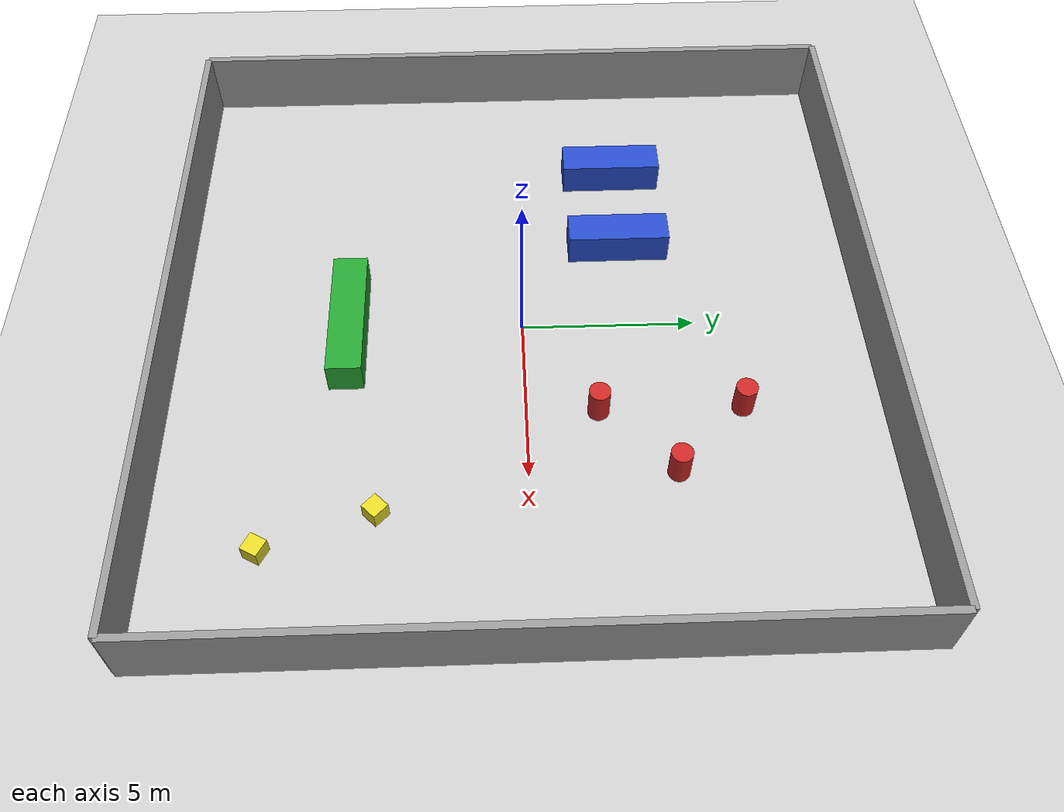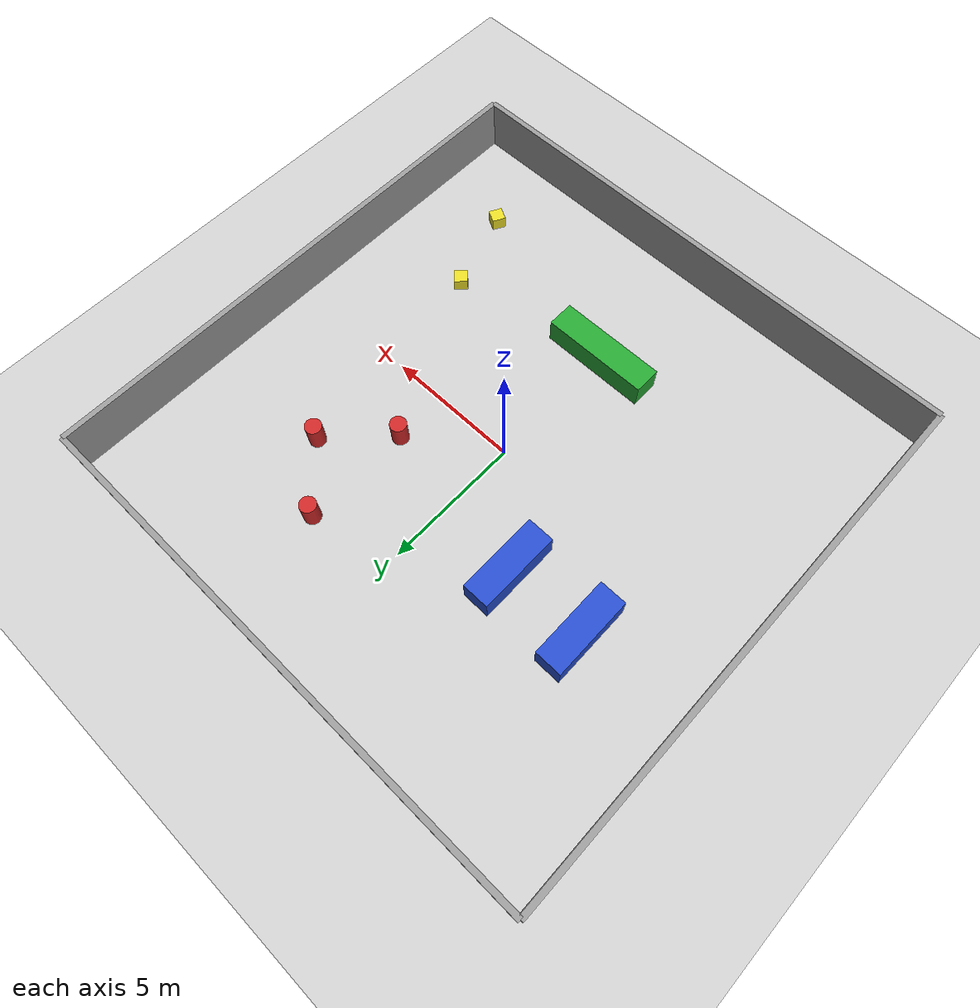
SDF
<sdf version='1.7'>
  <world name='default'>
    <light name='sun' type='directional'>
      <cast_shadows>1</cast_shadows>
      <pose>0 0 10 0 -0 0</pose>
      <diffuse>0.8 0.8 0.8 1</diffuse>
      <specular>0.2 0.2 0.2 1</specular>
      <attenuation>
        <range>1000</range>
        <constant>0.9</constant>
        <linear>0.01</linear>
        <quadratic>0.001</quadratic>
      </attenuation>
      <direction>-0.5 0.1 -0.9</direction>
    </light>

    <model name='ground_plane'>
      <static>1</static>
      <link name='link'>
        <collision name='collision'>
          <geometry>
            <plane>
              <normal>0 0 1</normal>
              <size>100 100</size>
            </plane>
          </geometry>
          <surface>
            <friction>
              <ode>
                <mu>100</mu>
                <mu2>50</mu2>
              </ode>
            </friction>
          </surface>
        </collision>
        <visual name='visual'>
          <cast_shadows>0</cast_shadows>
          <geometry>
            <plane>
              <normal>0 0 1</normal>
              <size>100 100</size>
            </plane>
          </geometry>
          <material>
            <script>
              <uri>file://media/materials/scripts/gazebo.material</uri>
              <name>Gazebo/Grey</name>
            </script>
          </material>
        </visual>
      </link>
    </model>

    <physics type='ode'>
      <max_step_size>0.001</max_step_size>
      <real_time_factor>1</real_time_factor>
      <real_time_update_rate>1000</real_time_update_rate>
    </physics>

    <scene>
      <ambient>0.4 0.4 0.4 1</ambient>
      <background>0.7 0.7 0.7 1</background>
      <shadows>1</shadows>
    </scene>

    <model name='big_arena'>
      <pose>0 0 0 0 0 0</pose>
      <static>1</static>

      <link name='wall_north'>
        <pose>0 10 1 0 0 0</pose>
        <collision name='col'>
          <geometry><box><size>20 0.2 2</size></box></geometry>
        </collision>
        <visual name='vis'>
          <geometry><box><size>20 0.2 2</size></box></geometry>
          <material>
            <script><uri>file://media/materials/scripts/gazebo.material</uri><name>Gazebo/Grey</name></script>
          </material>
        </visual>
      </link>
      <link name='wall_south'>
        <pose>0 -10 1 0 0 0</pose>
        <collision name='col'>
          <geometry><box><size>20 0.2 2</size></box></geometry>
        </collision>
        <visual name='vis'>
          <geometry><box><size>20 0.2 2</size></box></geometry>
          <material>
             <script><uri>file://media/materials/scripts/gazebo.material</uri><name>Gazebo/Grey</name></script>
          </material>
        </visual>
      </link>
      <link name='wall_east'>
        <pose>10 0 1 0 0 0</pose>
        <collision name='col'>
          <geometry><box><size>0.2 20 2</size></box></geometry>
        </collision>
        <visual name='vis'>
          <geometry><box><size>0.2 20 2</size></box></geometry>
          <material>
             <script><uri>file://media/materials/scripts/gazebo.material</uri><name>Gazebo/Grey</name></script>
          </material>
        </visual>
      </link>
      <link name='wall_west'>
        <pose>-10 0 1 0 0 0</pose>
        <collision name='col'>
          <geometry><box><size>0.2 20 2</size></box></geometry>
        </collision>
        <visual name='vis'>
          <geometry><box><size>0.2 20 2</size></box></geometry>
          <material>
             <script><uri>file://media/materials/scripts/gazebo.material</uri><name>Gazebo/Grey</name></script>
          </material>
        </visual>
      </link>
    </model>

    <model name='red_cylinder_1'>
      <pose>3 2 0.5 0 0 0</pose>
      <static>1</static>
      <link name='link'>
        <collision name='col'><geometry><cylinder><radius>0.3</radius><length>1</length></cylinder></geometry></collision>
        <visual name='vis'>
          <geometry><cylinder><radius>0.3</radius><length>1</length></cylinder></geometry>
          <material><script><uri>file://media/materials/scripts/gazebo.material</uri><name>Gazebo/Red</name></script></material>
        </visual>
      </link>
    </model>

    <model name='red_cylinder_2'>
      <pose>5 4 0.5 0 0 0</pose>
      <static>1</static>
      <link name='link'>
        <collision name='col'><geometry><cylinder><radius>0.3</radius><length>1</length></cylinder></geometry></collision>
        <visual name='vis'>
          <geometry><cylinder><radius>0.3</radius><length>1</length></cylinder></geometry>
          <material><script><uri>file://media/materials/scripts/gazebo.material</uri><name>Gazebo/Red</name></script></material>
        </visual>
      </link>
    </model>

    <model name='red_cylinder_3'>
      <pose>3 6 0.5 0 0 0</pose>
      <static>1</static>
      <link name='link'>
        <collision name='col'><geometry><cylinder><radius>0.3</radius><length>1</length></cylinder></geometry></collision>
        <visual name='vis'>
          <geometry><cylinder><radius>0.3</radius><length>1</length></cylinder></geometry>
          <material><script><uri>file://media/materials/scripts/gazebo.material</uri><name>Gazebo/Red</name></script></material>
        </visual>
      </link>
    </model>

    <model name='blue_gate_left'>
      <pose>-3 3 0.5 0 0 0</pose>
      <static>1</static>
      <link name='link'>
        <collision name='col'><geometry><box><size>1 3 1</size></box></geometry></collision>
        <visual name='vis'>
          <geometry><box><size>1 3 1</size></box></geometry>
          <material><script><uri>file://media/materials/scripts/gazebo.material</uri><name>Gazebo/Blue</name></script></material>
        </visual>
      </link>
    </model>

    <model name='blue_gate_right'>
      <pose>-6 3 0.5 0 0 0</pose>
      <static>1</static>
      <link name='link'>
        <collision name='col'><geometry><box><size>1 3 1</size></box></geometry></collision>
        <visual name='vis'>
          <geometry><box><size>1 3 1</size></box></geometry>
          <material><script><uri>file://media/materials/scripts/gazebo.material</uri><name>Gazebo/Blue</name></script></material>
        </visual>
      </link>
    </model>

    <model name='green_block'>
      <pose>0 -5 0.5 0 0 0</pose>
      <static>1</static>
      <link name='link'>
        <collision name='col'><geometry><box><size>4 1 1</size></box></geometry></collision>
        <visual name='vis'>
          <geometry><box><size>4 1 1</size></box></geometry>
          <material><script><uri>file://media/materials/scripts/gazebo.material</uri><name>Gazebo/Green</name></script></material>
        </visual>
      </link>
    </model>

    <model name='yellow_obstacle_1'>
      <pose>6 -4 0.25 0 0 0.785</pose>
      <static>1</static>
      <link name='link'>
        <collision name='col'><geometry><box><size>0.5 0.5 0.5</size></box></geometry></collision>
        <visual name='vis'>
          <geometry><box><size>0.5 0.5 0.5</size></box></geometry>
          <material><script><uri>file://media/materials/scripts/gazebo.material</uri><name>Gazebo/Yellow</name></script></material>
        </visual>
      </link>
    </model>

    <model name='yellow_obstacle_2'>
      <pose>7 -7 0.25 0 0 -0.5</pose>
      <static>1</static>
      <link name='link'>
        <collision name='col'><geometry><box><size>0.5 0.5 0.5</size></box></geometry></collision>
        <visual name='vis'>
          <geometry><box><size>0.5 0.5 0.5</size></box></geometry>
          <material><script><uri>file://media/materials/scripts/gazebo.material</uri><name>Gazebo/Yellow</name></script></material>
        </visual>
      </link>
    </model>

    <gui fullscreen='0'>
      <camera name='user_camera'>
        <pose>-0.5 -18 15 0 0.7 1.57</pose>
        <view_controller>orbit</view_controller>
      </camera>
    </gui>

  </world>
</sdf>
